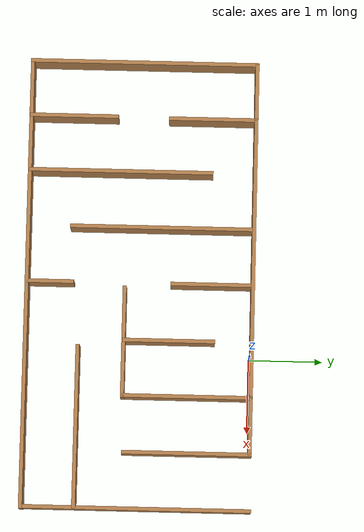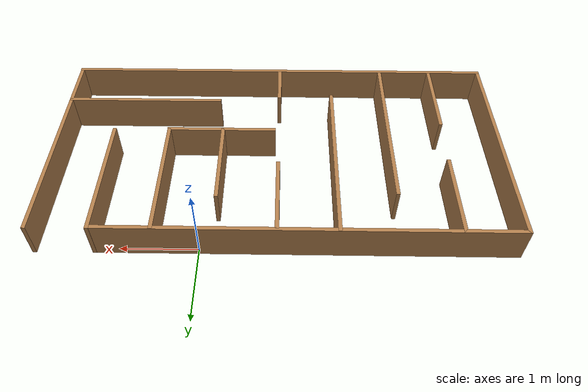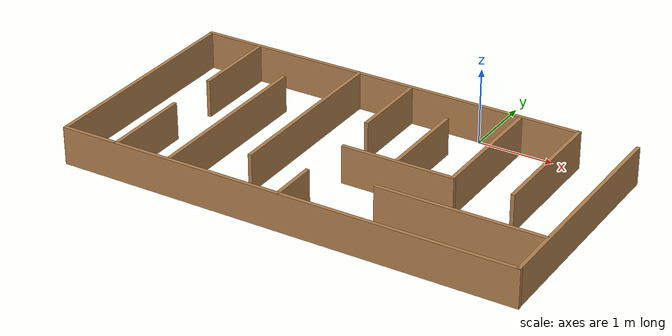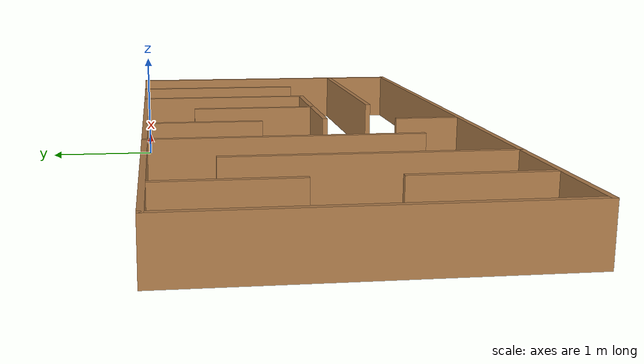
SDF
<?xml version='1.0'?>
<sdf version='1.6'>
  <model name='assignment_maze'>
    <pose frame=''>-0.9645 -1.48825 0 0 -0 0</pose>
    <link name='Wall_18'>
      <collision name='Wall_18_Collision'>
        <geometry>
          <box>
            <size>6.1 0.05 0.5</size>
          </box>
        </geometry>
        <pose frame=''>0 0 0.25 0 -0 0</pose>
      </collision>
      <visual name='Wall_18_Visual'>
        <pose frame=''>0 0 0.25 0 -0 0</pose>
        <geometry>
          <box>
            <size>6.1 0.05 0.5</size>
          </box>
        </geometry>
        <material>
          <script>
            <uri>file://media/materials/scripts/gazebo.material</uri>
            <name>Gazebo/Wood</name>
          </script>
          <ambient>1 1 1 1</ambient>
        </material>
        <meta>
          <layer>0</layer>
        </meta>
      </visual>
      <pose frame=''>0.0005 -1.52975 0 0 -0 0</pose>
    </link>
    <link name='Wall_20'>
      <collision name='Wall_20_Collision'>
        <geometry>
          <box>
            <size>3.1 0.05 0.5</size>
          </box>
        </geometry>
        <pose frame=''>0 0 0.25 0 -0 0</pose>
      </collision>
      <visual name='Wall_20_Visual'>
        <pose frame=''>0 0 0.25 0 -0 0</pose>
        <geometry>
          <box>
            <size>3.1 0.05 0.5</size>
          </box>
        </geometry>
        <material>
          <script>
            <uri>file://media/materials/scripts/gazebo.material</uri>
            <name>Gazebo/Wood</name>
          </script>
          <ambient>1 1 1 1</ambient>
        </material>
        <meta>
          <layer>0</layer>
        </meta>
      </visual>
      <pose frame=''>-3.0255 -0.00375 0 0 -0 1.5708</pose>
    </link>
    <link name='Wall_22'>
      <collision name='Wall_22_Collision'>
        <geometry>
          <box>
            <size>3.1 0.05 0.5</size>
          </box>
        </geometry>
        <pose frame=''>0 0 0.25 0 -0 0</pose>
      </collision>
      <visual name='Wall_22_Visual'>
        <pose frame=''>0 0 0.25 0 -0 0</pose>
        <geometry>
          <box>
            <size>3.1 0.05 0.5</size>
          </box>
        </geometry>
        <material>
          <script>
            <uri>file://media/materials/scripts/gazebo.material</uri>
            <name>Gazebo/Wood</name>
          </script>
          <ambient>1 1 1 1</ambient>
        </material>
        <meta>
          <layer>0</layer>
        </meta>
      </visual>
      <pose frame=''>3.02 0.00475 0 0 -0 -1.5708</pose>
    </link>
    <link name='Wall_24'>
      <collision name='Wall_24_Collision'>
        <geometry>
          <box>
            <size>5.32 0.05 0.5</size>
          </box>
        </geometry>
        <pose frame=''>0 0 0.25 0 -0 0</pose>
      </collision>
      <visual name='Wall_24_Visual'>
        <pose frame=''>0 0 0.25 0 -0 0</pose>
        <geometry>
          <box>
            <size>5.32 0.05 0.5</size>
          </box>
        </geometry>
        <material>
          <script>
            <uri>file://media/materials/scripts/gazebo.material</uri>
            <name>Gazebo/Wood</name>
          </script>
          <ambient>1 1 1 1</ambient>
        </material>
        <meta>
          <layer>0</layer>
        </meta>
      </visual>
      <pose frame=''>-0.3905 1.52125 0 0 -0 0</pose>
    </link>
    <link name='Wall_27'>
      <collision name='Wall_27_Collision'>
        <geometry>
          <box>
            <size>1.2 0.05 0.5</size>
          </box>
        </geometry>
        <pose frame=''>0 0 0.25 0 -0 0</pose>
      </collision>
      <visual name='Wall_27_Visual'>
        <pose frame=''>0 0 0.25 0 -0 0</pose>
        <geometry>
          <box>
            <size>1.2 0.05 0.5</size>
          </box>
        </geometry>
        <material>
          <script>
            <uri>file://media/materials/scripts/gazebo.material</uri>
            <name>Gazebo/Wood</name>
          </script>
          <ambient>1 1 1 1</ambient>
        </material>
        <meta>
          <layer>0</layer>
        </meta>
      </visual>
      <pose frame=''>-2.277 -0.94625 0 0 -0 1.5708</pose>
    </link>
    <link name='Wall_29'>
      <collision name='Wall_29_Collision'>
        <geometry>
          <box>
            <size>1.2 0.05 0.5</size>
          </box>
        </geometry>
        <pose frame=''>0 0 0.25 0 -0 0</pose>
      </collision>
      <visual name='Wall_29_Visual'>
        <pose frame=''>0 0 0.25 0 -0 0</pose>
        <geometry>
          <box>
            <size>1.2 0.05 0.5</size>
          </box>
        </geometry>
        <material>
          <script>
            <uri>file://media/materials/scripts/gazebo.material</uri>
            <name>Gazebo/Wood</name>
          </script>
          <ambient>1 1 1 1</ambient>
        </material>
        <meta>
          <layer>0</layer>
        </meta>
      </visual>
      <pose frame=''>-2.2665 0.93925 0 0 -0 -1.5708</pose>
    </link>
    <link name='Wall_31'>
      <collision name='Wall_31_Collision'>
        <geometry>
          <box>
            <size>2.5 0.05 0.5</size>
          </box>
        </geometry>
        <pose frame=''>0 0 0.25 0 -0 0</pose>
      </collision>
      <visual name='Wall_31_Visual'>
        <pose frame=''>0 0 0.25 0 -0 0</pose>
        <geometry>
          <box>
            <size>2.5 0.05 0.5</size>
          </box>
        </geometry>
        <material>
          <script>
            <uri>file://media/materials/scripts/gazebo.material</uri>
            <name>Gazebo/Wood</name>
          </script>
          <ambient>1 1 1 1</ambient>
        </material>
        <meta>
          <layer>0</layer>
        </meta>
      </visual>
      <pose frame=''>-1.5305 -0.29725 0 0 -0 1.5708</pose>
    </link>
    <link name='Wall_33'>
      <collision name='Wall_33_Collision'>
        <geometry>
          <box>
            <size>2.5 0.05 0.5</size>
          </box>
        </geometry>
        <pose frame=''>0 0 0.25 0 -0 0</pose>
      </collision>
      <visual name='Wall_33_Visual'>
        <pose frame=''>0 0 0.25 0 -0 0</pose>
        <geometry>
          <box>
            <size>2.5 0.05 0.5</size>
          </box>
        </geometry>
        <material>
          <script>
            <uri>file://media/materials/scripts/gazebo.material</uri>
            <name>Gazebo/Wood</name>
          </script>
          <ambient>1 1 1 1</ambient>
        </material>
        <meta>
          <layer>0</layer>
        </meta>
      </visual>
      <pose frame=''>-0.7715 0.28825 0 0 -0 -1.5708</pose>
    </link>
    <link name='Wall_35'>
      <collision name='Wall_35_Collision'>
        <geometry>
          <box>
            <size>1.1 0.05 0.5</size>
          </box>
        </geometry>
        <pose frame=''>0 0 0.25 0 -0 0</pose>
      </collision>
      <visual name='Wall_35_Visual'>
        <pose frame=''>0 0 0.25 0 -0 0</pose>
        <geometry>
          <box>
            <size>1.1 0.05 0.5</size>
          </box>
        </geometry>
        <material>
          <script>
            <uri>file://media/materials/scripts/gazebo.material</uri>
            <name>Gazebo/Wood</name>
          </script>
          <ambient>1 1 1 1</ambient>
        </material>
        <meta>
          <layer>0</layer>
        </meta>
      </visual>
      <pose frame=''>-0.0125 0.963087 0 0 -0 1.5708</pose>
    </link>
    <link name='Wall_37'>
      <collision name='Wall_37_Collision'>
        <geometry>
          <box>
            <size>0.65 0.05 0.5</size>
          </box>
        </geometry>
        <pose frame=''>0 0 0.25 0 -0 0</pose>
      </collision>
      <visual name='Wall_37_Visual'>
        <pose frame=''>0 0 0.25 0 -0 0</pose>
        <geometry>
          <box>
            <size>0.65 0.05 0.5</size>
          </box>
        </geometry>
        <material>
          <script>
            <uri>file://media/materials/scripts/gazebo.material</uri>
            <name>Gazebo/Wood</name>
          </script>
          <ambient>1 1 1 1</ambient>
        </material>
        <meta>
          <layer>0</layer>
        </meta>
      </visual>
      <pose frame=''>-0.0135 -1.21994 0 0 -0 -1.5708</pose>
    </link>
    <link name='Wall_39'>
      <collision name='Wall_39_Collision'>
        <geometry>
          <box>
            <size>1.75 0.05 0.5</size>
          </box>
        </geometry>
        <pose frame=''>0 0 0.25 0 -0 0</pose>
      </collision>
      <visual name='Wall_39_Visual'>
        <pose frame=''>0 0 0.25 0 -0 0</pose>
        <geometry>
          <box>
            <size>1.75 0.05 0.5</size>
          </box>
        </geometry>
        <material>
          <script>
            <uri>file://media/materials/scripts/gazebo.material</uri>
            <name>Gazebo/Wood</name>
          </script>
          <ambient>1 1 1 1</ambient>
        </material>
        <meta>
          <layer>0</layer>
        </meta>
      </visual>
      <pose frame=''>1.5055 0.66325 0 0 -0 -1.5708</pose>
    </link>
    <link name='Wall_45'>
      <collision name='Wall_45_Collision'>
        <geometry>
          <box>
            <size>1.5 0.05 0.5</size>
          </box>
        </geometry>
        <pose frame=''>0 0 0.25 0 -0 0</pose>
      </collision>
      <visual name='Wall_45_Visual'>
        <pose frame=''>0 0 0.25 0 -0 0</pose>
        <geometry>
          <box>
            <size>1.5 0.05 0.5</size>
          </box>
        </geometry>
        <material>
          <script>
            <uri>file://media/materials/scripts/gazebo.material</uri>
            <name>Gazebo/Wood</name>
          </script>
          <ambient>1 1 1 1</ambient>
        </material>
        <meta>
          <layer>0</layer>
        </meta>
      </visual>
      <pose frame=''>0.7815 -0.206975 0 0 -0 3.14159</pose>
    </link>
    <link name='Wall_47'>
      <collision name='Wall_47_Collision'>
        <geometry>
          <box>
            <size>1.25 0.05 0.5</size>
          </box>
        </geometry>
        <pose frame=''>0 0 0.25 0 -0 0</pose>
      </collision>
      <visual name='Wall_47_Visual'>
        <pose frame=''>0 0 0.25 0 -0 0</pose>
        <geometry>
          <box>
            <size>1.25 0.05 0.5</size>
          </box>
        </geometry>
        <material>
          <script>
            <uri>file://media/materials/scripts/gazebo.material</uri>
            <name>Gazebo/Wood</name>
          </script>
          <ambient>1 1 1 1</ambient>
        </material>
        <meta>
          <layer>0</layer>
        </meta>
      </visual>
      <pose frame=''>0.7585 0.399525 0 0 -0 -1.5708</pose>
    </link>
    <link name='Wall_49'>
      <collision name='Wall_49_Collision'>
        <geometry>
          <box>
            <size>1.75 0.05 0.5</size>
          </box>
        </geometry>
        <pose frame=''>0 0 0.25 0 -0 0</pose>
      </collision>
      <visual name='Wall_49_Visual'>
        <pose frame=''>0 0 0.25 0 -0 0</pose>
        <geometry>
          <box>
            <size>1.75 0.05 0.5</size>
          </box>
        </geometry>
        <material>
          <script>
            <uri>file://media/materials/scripts/gazebo.material</uri>
            <name>Gazebo/Wood</name>
          </script>
          <ambient>1 1 1 1</ambient>
        </material>
        <meta>
          <layer>0</layer>
        </meta>
      </visual>
      <pose frame=''>2.2655 0.67475 0 0 -0 -1.5708</pose>
    </link>
    <link name='Wall_51'>
      <collision name='Wall_51_Collision'>
        <geometry>
          <box>
            <size>2.2 0.05 0.5</size>
          </box>
        </geometry>
        <pose frame=''>0 0 0.25 0 -0 0</pose>
      </collision>
      <visual name='Wall_51_Visual'>
        <pose frame=''>0 0 0.25 0 -0 0</pose>
        <geometry>
          <box>
            <size>2.2 0.05 0.5</size>
          </box>
        </geometry>
        <material>
          <script>
            <uri>file://media/materials/scripts/gazebo.material</uri>
            <name>Gazebo/Wood</name>
          </script>
          <ambient>1 1 1 1</ambient>
        </material>
        <meta>
          <layer>0</layer>
        </meta>
      </visual>
      <pose frame=''>1.934 -0.820313 0 0 -0 0</pose>
    </link>
    <static>1</static>
  </model>
</sdf>
